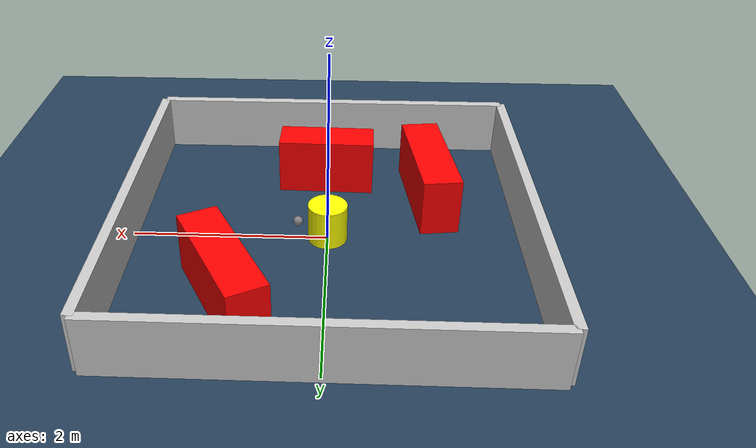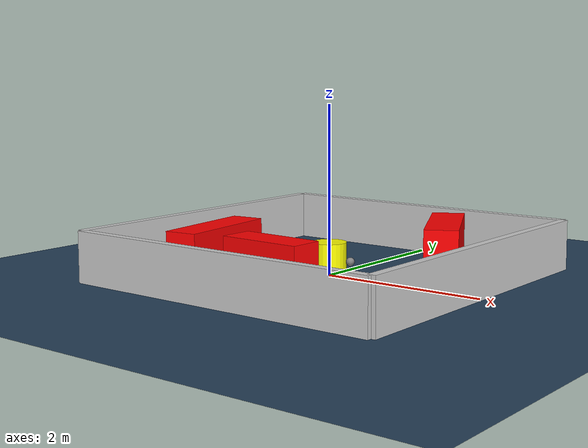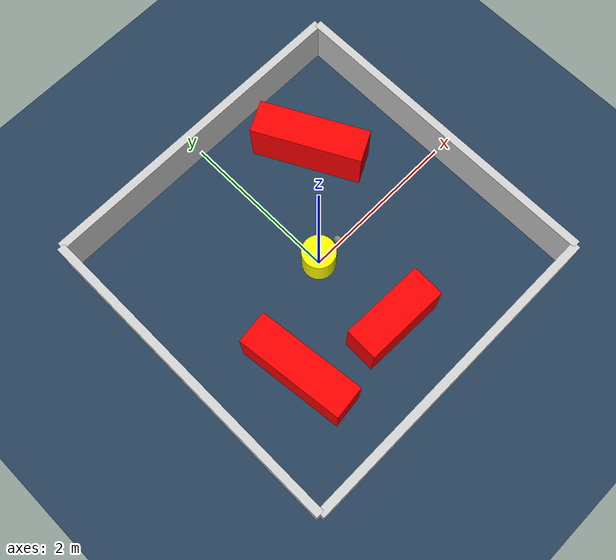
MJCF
<?xml version="1.0" ?>
<mujoco model="generated_environment">
  <option timestep="0.01" integrator="RK4" cone="elliptic"/>
  <default>
    <geom density="1"/>
  </default>
  <asset>
    <texture builtin="gradient" height="3072" rgb1="0.3 0.5 0.7" rgb2="0 0 0" type="skybox" width="512"/>
    <texture builtin="checker" height="300" mark="edge" markrgb="0.8 0.8 0.8" name="groundplane" rgb1="0.2 0.3 0.4" rgb2="0.1 0.2 0.3" type="2d" width="300"/>
    <material name="groundplane" reflectance="0.2" texrepeat="5 5" texture="groundplane" texuniform="true"/>
    <material name="robot" rgba="0.0 1.0 0.0 1"/>
  </asset>
  <worldbody>
    <light dir="0 0 -1" directional="true" pos="0 0 1.5"/>
    <geom condim="4" friction="1.0 0.005 0.001" material="groundplane" name="floor" size="0 0 0.05" type="plane"/>
    <body name="walls">
      <geom name="wall_1" condim="4" pos="-2.0 0.0 0.3" rgba="0.800000011920929 0.800000011920929 0.800000011920929 1.0" size="0.05 2.0 0.3" type="box"/>
      <geom name="wall_2" condim="4" pos="2.0 0.0 0.3" rgba="0.800000011920929 0.800000011920929 0.800000011920929 1.0" size="0.05 2.0 0.3" type="box"/>
      <geom name="wall_3" condim="4" pos="0.0 -2.0 0.3" rgba="0.800000011920929 0.800000011920929 0.800000011920929 1.0" size="2.0 0.05 0.3" type="box"/>
      <geom name="wall_4" condim="4" pos="0.0 2.0 0.3" rgba="0.800000011920929 0.800000011920929 0.800000011920929 1.0" size="2.0 0.05 0.3" type="box"/>
    </body>
    <body name="robot">
      <joint name="joint_x" type="slide" pos="0 0 0" axis="1 0 0"/>
      <joint name="joint_y" type="slide" pos="0 0 0" axis="0 1 0"/>
      <geom name="robot" type="sphere" pos="0.3 0.0 0.2" size="0.05" mass="5." friction="1.0 0.005 0.0001" condim="4" rgba="0.5 0.5 0.5 1.0"/>
      <site name="sensor_ball"/>
    </body>
    <body name="obstacle_movable_1">
      <geom name="obstacle_movable_1" condim="4" pos="0.0 0.0 0.2" euler="0 0 0.0" friction="1.0 0.005 0.001" rgba="1.0 1.0 0.0 1.0" size="0.2 0.2 0.0" type="cylinder" mass="0.1"/>
      <joint type="free"/>
    </body>
    <body name="obstacle_2_static">
      <geom name="obstacle_2_static" condim="4" pos="-1.0772053205005696 -0.7851657093793436 0.3" euler="0 0 96.73178996890094" friction="1.0 0.005 0.001" rgba="1 0 0 1" size="0.6583654532234695 0.2 0.3" type="box"/>
    </body>
    <body name="obstacle_3_static">
      <geom name="obstacle_3_static" condim="4" pos="0.9223181878705191 1.0538396732967101 0.3" euler="0 0 297.5830824880282" friction="1.0 0.005 0.001" rgba="1 0 0 1" size="0.6668025353862495 0.2 0.3" type="box"/>
    </body>
    <body name="obstacle_4_static">
      <geom name="obstacle_4_static" condim="4" pos="0.03811382803774088 -1.1074319394887968 0.3" euler="0 0 358.4698094252536" friction="1.0 0.005 0.001" rgba="1 0 0 1" size="0.5143114990204096 0.2 0.3" type="box"/>
    </body>
  </worldbody>
  <actuator>
    <motor name="actuator_x" joint="joint_x" gear="1" ctrlrange="-1 1"/>
    <motor name="actuator_y" joint="joint_y" gear="1" ctrlrange="-1 1"/>
  </actuator>
</mujoco>
